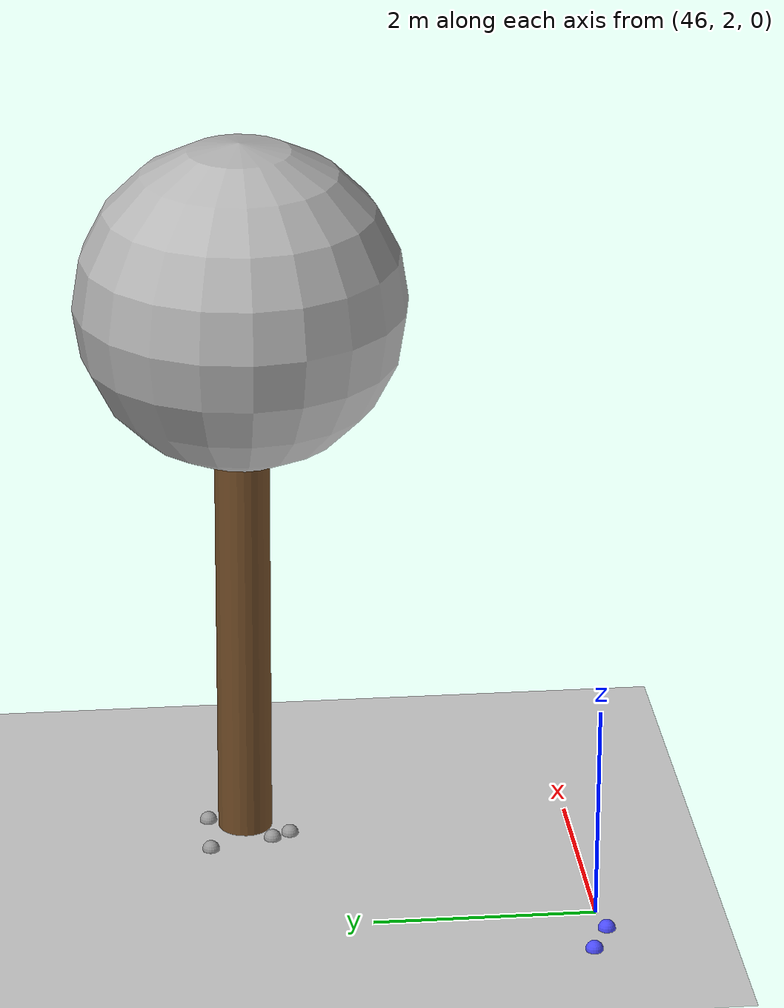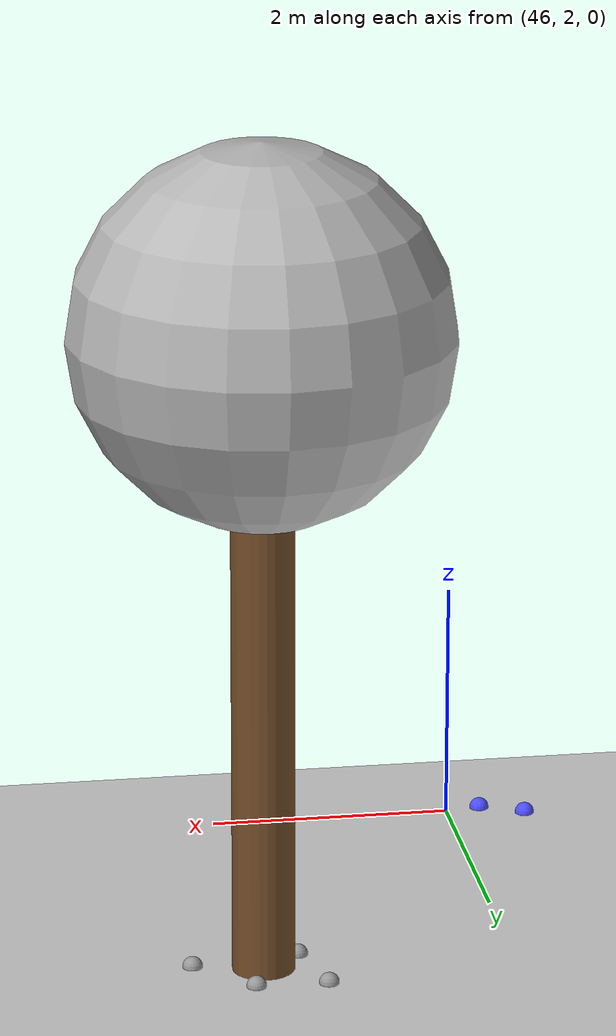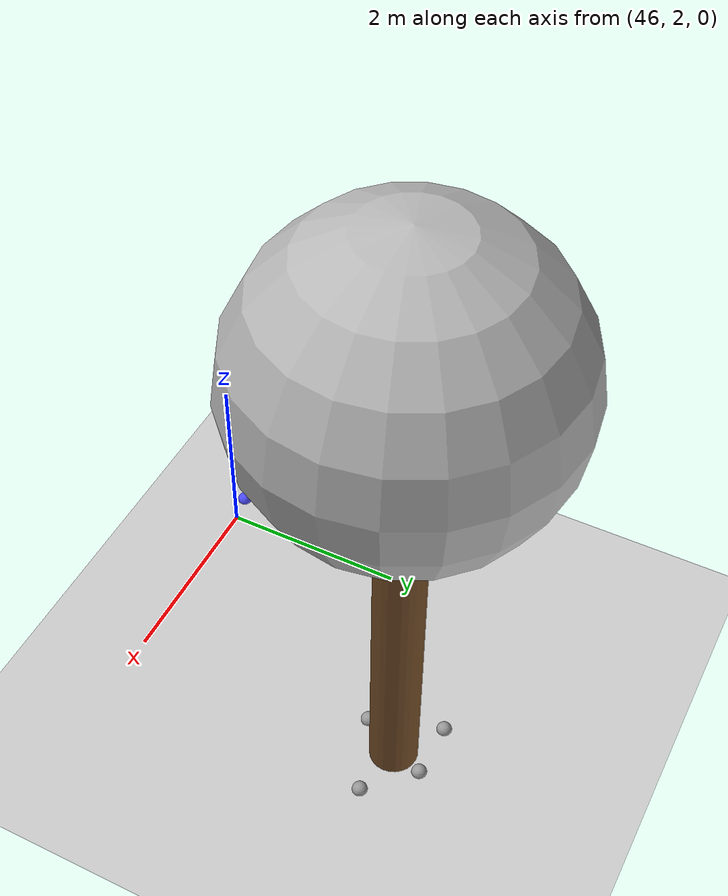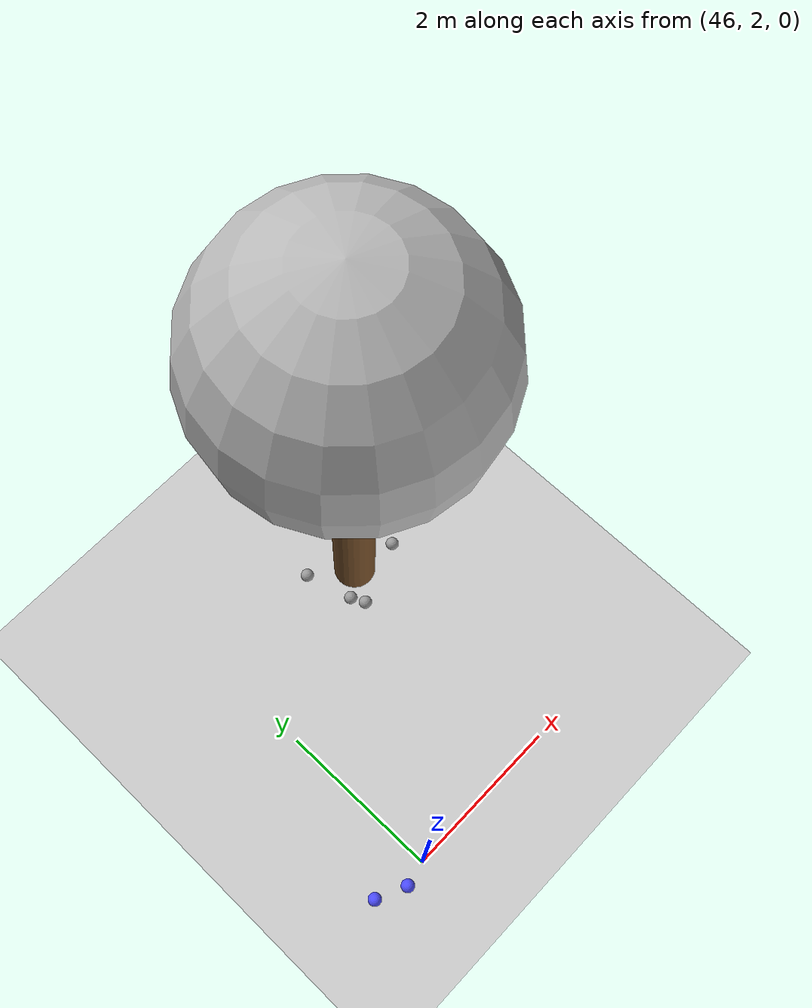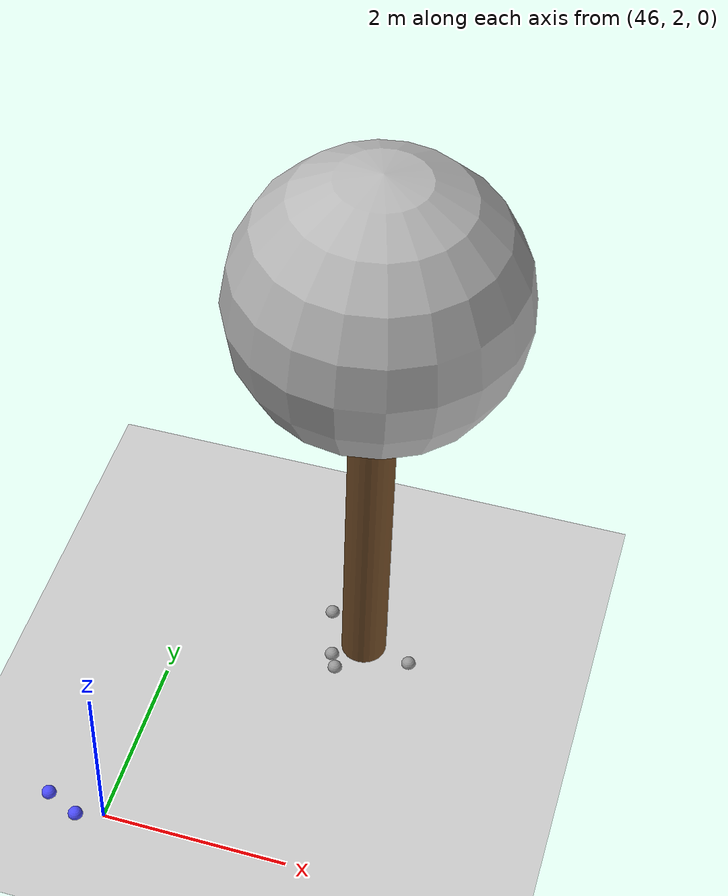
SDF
<sdf version="1.7">
 <world name="default">
  <model name="ground_plane">
   <static>1</static>
   <link name="link">
    <collision name="collision">
     <geometry><plane><normal>0 0 1</normal><size>100 100</size></plane></geometry>
     <surface>
      <contact><collide_bitmask>65535</collide_bitmask></contact>
      <friction><ode><mu>100</mu><mu2>50</mu2></ode></friction>
     </surface>
    </collision>
    <visual name="visual">
     <cast_shadows>0</cast_shadows>
     <geometry><plane><normal>0 0 1</normal><size>100 100</size></plane></geometry>
     <material>
      <script><uri>file://media/materials/scripts/gazebo.material</uri><name>Gazebo/Grey</name></script>
     </material>
    </visual>
   </link>
  </model>
  <model name="tree_simple_87">
   <static>1</static>
   <link name="link">
    <pose>0 0 0.1 0 -0 0</pose>
    <inertial>
     <mass>666</mass>
     <inertia>
      <ixx>0.0861167</ixx>
      <ixy>0</ixy>
      <ixz>0</ixz>
      <iyy>0.0861167</iyy>
      <iyz>0</iyz>
      <izz>0.0861167</izz>
     </inertia>
    </inertial>
    <collision name="collision_trunk">
     <pose>0 0 2 0 -0 0</pose>
     <geometry><cylinder><radius>0.25</radius><length>4</length></cylinder></geometry>
     <surface>
      <contact>
       <poissons_ratio>0.347</poissons_ratio>
       <elastic_modulus>8.8e+09</elastic_modulus>
       <ode><kp>100000</kp><kd>100</kd><max_vel>100</max_vel><min_depth>0.001</min_depth></ode>
      </contact>
      <friction>
       <torsional>
        <coefficient>1</coefficient>
        <use_patch_radius>0</use_patch_radius>
        <surface_radius>0.01</surface_radius>
       </torsional>
      </friction>
     </surface>
    </collision>
    <collision name="collision_treetop">
     <pose>0 0 5.2 0 -0 0</pose>
     <geometry><sphere><radius>1.5</radius></sphere></geometry>
     <surface>
      <contact>
       <poissons_ratio>0.347</poissons_ratio>
       <elastic_modulus>8.8e+09</elastic_modulus>
       <ode><kp>100000</kp><kd>100</kd><max_vel>100</max_vel><min_depth>0.001</min_depth></ode>
      </contact>
      <friction>
       <torsional>
        <coefficient>1</coefficient>
        <use_patch_radius>0</use_patch_radius>
        <surface_radius>0.01</surface_radius>
       </torsional>
      </friction>
     </surface>
    </collision>
    <visual name="trunk">
     <pose>0 0 2 0 -0 0</pose>
     <geometry><cylinder><radius>0.25</radius><length>4</length></cylinder></geometry>
     <material>
      <script>
       <uri>model://tree_simple/scripts</uri>
       <uri>model://tree_simple/materials/textures</uri>
       <name>TreeSimple/Trunk</name>
      </script>
     </material>
    </visual>
    <visual name="treetop">
     <pose>0 0 5.2 0 -0 0</pose>
     <geometry><sphere><radius>1.5</radius></sphere></geometry>
     <material>
      <script>
       <uri>model://tree_simple/scripts</uri>
       <uri>model://tree_simple/materials/textures</uri>
       <name>TreeSimple/Treetop</name>
      </script>
     </material>
    </visual>
   </link>
   <pose>48 5 -0.1 0 -0 0</pose>
  </model>
  <model name="seed_black_78">
   <link name="link">
    <inertial>
     <mass>1</mass>
     <inertia><ixx>0.1</ixx><ixy>0</ixy><ixz>0</ixz><iyy>0.1</iyy><iyz>0</iyz><izz>0.1</izz></inertia>
    </inertial>
    <visual name="visual">
     <geometry><sphere><radius>0.08</radius></sphere></geometry>
     <material>
      <script><name>Gazebo/Grey</name><uri>file://media/materials/scripts/gazebo.material</uri></script>
      <shader type="pixel"><normal_map>__default__</normal_map></shader>
      <ambient>0 0 0 1</ambient>
      <diffuse>0.7 0.7 0.7 1</diffuse>
      <specular>0.01 0.01 0.01 1</specular>
      <emissive>0 0 0 1</emissive>
     </material>
    </visual>
    <collision name="collision">
     <geometry><sphere><radius>0.0005</radius></sphere></geometry>
     <surface>
      <friction>
       <ode><mu>1</mu><mu2>1</mu2><fdir1>0 0 0</fdir1><slip1>0</slip1><slip2>0</slip2></ode>
       <torsional>
        <coefficient>1</coefficient>
        <patch_radius>0</patch_radius>
        <surface_radius>0</surface_radius>
        <use_patch_radius>1</use_patch_radius>
        <ode><slip>0</slip></ode>
       </torsional>
      </friction>
      <bounce><restitution_coefficient>0</restitution_coefficient><threshold>1e+06</threshold></bounce>
      <contact>
       <collide_without_contact>0</collide_without_contact>
       <collide_without_contact_bitmask>1</collide_without_contact_bitmask>
       <collide_bitmask>1</collide_bitmask>
       <ode>
        <soft_cfm>0</soft_cfm>
        <soft_erp>0.2</soft_erp>
        <kp>1e+13</kp>
        <kd>1</kd>
        <max_vel>0.01</max_vel>
        <min_depth>0</min_depth>
       </ode>
       <bullet>
        <split_impulse>1</split_impulse>
        <split_impulse_penetration_threshold>-0.01</split_impulse_penetration_threshold>
        <soft_cfm>0</soft_cfm>
        <soft_erp>0.2</soft_erp>
        <kp>1e+13</kp>
        <kd>1</kd>
       </bullet>
      </contact>
     </surface>
    </collision>
   </link>
   <static>0</static>
   <pose>47.531 5.35329 0.0005 0 -0 0</pose>
  </model>
  <model name="seed_black_79">
   <link name="link">
    <inertial>
     <mass>1</mass>
     <inertia><ixx>0.1</ixx><ixy>0</ixy><ixz>0</ixz><iyy>0.1</iyy><iyz>0</iyz><izz>0.1</izz></inertia>
    </inertial>
    <visual name="visual">
     <geometry><sphere><radius>0.08</radius></sphere></geometry>
     <material>
      <script><name>Gazebo/Grey</name><uri>file://media/materials/scripts/gazebo.material</uri></script>
      <shader type="pixel"><normal_map>__default__</normal_map></shader>
      <ambient>0 0 0 1</ambient>
      <diffuse>0.7 0.7 0.7 1</diffuse>
      <specular>0.01 0.01 0.01 1</specular>
      <emissive>0 0 0 1</emissive>
     </material>
    </visual>
    <collision name="collision">
     <geometry><sphere><radius>0.0005</radius></sphere></geometry>
     <surface>
      <friction>
       <ode><mu>1</mu><mu2>1</mu2><fdir1>0 0 0</fdir1><slip1>0</slip1><slip2>0</slip2></ode>
       <torsional>
        <coefficient>1</coefficient>
        <patch_radius>0</patch_radius>
        <surface_radius>0</surface_radius>
        <use_patch_radius>1</use_patch_radius>
        <ode><slip>0</slip></ode>
       </torsional>
      </friction>
      <bounce><restitution_coefficient>0</restitution_coefficient><threshold>1e+06</threshold></bounce>
      <contact>
       <collide_without_contact>0</collide_without_contact>
       <collide_without_contact_bitmask>1</collide_without_contact_bitmask>
       <collide_bitmask>1</collide_bitmask>
       <ode>
        <soft_cfm>0</soft_cfm>
        <soft_erp>0.2</soft_erp>
        <kp>1e+13</kp>
        <kd>1</kd>
        <max_vel>0.01</max_vel>
        <min_depth>0</min_depth>
       </ode>
       <bullet>
        <split_impulse>1</split_impulse>
        <split_impulse_penetration_threshold>-0.01</split_impulse_penetration_threshold>
        <soft_cfm>0</soft_cfm>
        <soft_erp>0.2</soft_erp>
        <kp>1e+13</kp>
        <kd>1</kd>
       </bullet>
      </contact>
     </surface>
    </collision>
   </link>
   <static>0</static>
   <pose>47.7755 4.60112 0.0005 0 -0 0</pose>
  </model>
  <model name="seed_black_83">
   <link name="link">
    <inertial>
     <mass>1</mass>
     <inertia><ixx>0.1</ixx><ixy>0</ixy><ixz>0</ixz><iyy>0.1</iyy><iyz>0</iyz><izz>0.1</izz></inertia>
    </inertial>
    <visual name="visual">
     <geometry><sphere><radius>0.08</radius></sphere></geometry>
     <material>
      <script><name>Gazebo/Grey</name><uri>file://media/materials/scripts/gazebo.material</uri></script>
      <shader type="pixel"><normal_map>__default__</normal_map></shader>
      <ambient>0 0 0 1</ambient>
      <diffuse>0.7 0.7 0.7 1</diffuse>
      <specular>0.01 0.01 0.01 1</specular>
      <emissive>0 0 0 1</emissive>
     </material>
    </visual>
    <collision name="collision">
     <geometry><sphere><radius>0.0005</radius></sphere></geometry>
     <surface>
      <friction>
       <ode><mu>1</mu><mu2>1</mu2><fdir1>0 0 0</fdir1><slip1>0</slip1><slip2>0</slip2></ode>
       <torsional>
        <coefficient>1</coefficient>
        <patch_radius>0</patch_radius>
        <surface_radius>0</surface_radius>
        <use_patch_radius>1</use_patch_radius>
        <ode><slip>0</slip></ode>
       </torsional>
      </friction>
      <bounce><restitution_coefficient>0</restitution_coefficient><threshold>1e+06</threshold></bounce>
      <contact>
       <collide_without_contact>0</collide_without_contact>
       <collide_without_contact_bitmask>1</collide_without_contact_bitmask>
       <collide_bitmask>1</collide_bitmask>
       <ode>
        <soft_cfm>0</soft_cfm>
        <soft_erp>0.2</soft_erp>
        <kp>1e+13</kp>
        <kd>1</kd>
        <max_vel>0.01</max_vel>
        <min_depth>0</min_depth>
       </ode>
       <bullet>
        <split_impulse>1</split_impulse>
        <split_impulse_penetration_threshold>-0.01</split_impulse_penetration_threshold>
        <soft_cfm>0</soft_cfm>
        <soft_erp>0.2</soft_erp>
        <kp>1e+13</kp>
        <kd>1</kd>
       </bullet>
      </contact>
     </surface>
    </collision>
   </link>
   <static>0</static>
   <pose>48.1031 5.33597 0.0005 0 -0 0</pose>
  </model>
  <model name="seed_black_84">
   <link name="link">
    <inertial>
     <mass>1</mass>
     <inertia><ixx>0.1</ixx><ixy>0</ixy><ixz>0</ixz><iyy>0.1</iyy><iyz>0</iyz><izz>0.1</izz></inertia>
    </inertial>
    <visual name="visual">
     <geometry><sphere><radius>0.08</radius></sphere></geometry>
     <material>
      <script><name>Gazebo/Grey</name><uri>file://media/materials/scripts/gazebo.material</uri></script>
      <shader type="pixel"><normal_map>__default__</normal_map></shader>
      <ambient>0 0 0 1</ambient>
      <diffuse>0.7 0.7 0.7 1</diffuse>
      <specular>0.01 0.01 0.01 1</specular>
      <emissive>0 0 0 1</emissive>
     </material>
    </visual>
    <collision name="collision">
     <geometry><sphere><radius>0.0005</radius></sphere></geometry>
     <surface>
      <friction>
       <ode><mu>1</mu><mu2>1</mu2><fdir1>0 0 0</fdir1><slip1>0</slip1><slip2>0</slip2></ode>
       <torsional>
        <coefficient>1</coefficient>
        <patch_radius>0</patch_radius>
        <surface_radius>0</surface_radius>
        <use_patch_radius>1</use_patch_radius>
        <ode><slip>0</slip></ode>
       </torsional>
      </friction>
      <bounce><restitution_coefficient>0</restitution_coefficient><threshold>1e+06</threshold></bounce>
      <contact>
       <collide_without_contact>0</collide_without_contact>
       <collide_without_contact_bitmask>1</collide_without_contact_bitmask>
       <collide_bitmask>1</collide_bitmask>
       <ode>
        <soft_cfm>0</soft_cfm>
        <soft_erp>0.2</soft_erp>
        <kp>1e+13</kp>
        <kd>1</kd>
        <max_vel>0.01</max_vel>
        <min_depth>0</min_depth>
       </ode>
       <bullet>
        <split_impulse>1</split_impulse>
        <split_impulse_penetration_threshold>-0.01</split_impulse_penetration_threshold>
        <soft_cfm>0</soft_cfm>
        <soft_erp>0.2</soft_erp>
        <kp>1e+13</kp>
        <kd>1</kd>
       </bullet>
      </contact>
     </surface>
    </collision>
   </link>
   <static>0</static>
   <pose>47.693 4.77012 0.0005 0 -0 0</pose>
  </model>
  <model name="seed_black_85">
   <link name="link">
    <inertial>
     <mass>1</mass>
     <inertia><ixx>0.1</ixx><ixy>0</ixy><ixz>0</ixz><iyy>0.1</iyy><iyz>0</iyz><izz>0.1</izz></inertia>
    </inertial>
    <visual name="visual">
     <geometry><sphere><radius>0.08</radius></sphere></geometry>
     <material>
      <script><name>Gazebo/Grey</name><uri>file://media/materials/scripts/gazebo.material</uri></script>
      <shader type="pixel"><normal_map>__default__</normal_map></shader>
      <ambient>0 0 0 1</ambient>
      <diffuse>0.7 0.7 0.7 1</diffuse>
      <specular>0.01 0.01 0.01 1</specular>
      <emissive>0 0 0 1</emissive>
     </material>
    </visual>
    <collision name="collision">
     <geometry><sphere><radius>0.0005</radius></sphere></geometry>
     <surface>
      <friction>
       <ode><mu>1</mu><mu2>1</mu2><fdir1>0 0 0</fdir1><slip1>0</slip1><slip2>0</slip2></ode>
       <torsional>
        <coefficient>1</coefficient>
        <patch_radius>0</patch_radius>
        <surface_radius>0</surface_radius>
        <use_patch_radius>1</use_patch_radius>
        <ode><slip>0</slip></ode>
       </torsional>
      </friction>
      <bounce><restitution_coefficient>0</restitution_coefficient><threshold>1e+06</threshold></bounce>
      <contact>
       <collide_without_contact>0</collide_without_contact>
       <collide_without_contact_bitmask>1</collide_without_contact_bitmask>
       <collide_bitmask>1</collide_bitmask>
       <ode>
        <soft_cfm>0</soft_cfm>
        <soft_erp>0.2</soft_erp>
        <kp>1e+13</kp>
        <kd>1</kd>
        <max_vel>0.01</max_vel>
        <min_depth>0</min_depth>
       </ode>
       <bullet>
        <split_impulse>1</split_impulse>
        <split_impulse_penetration_threshold>-0.01</split_impulse_penetration_threshold>
        <soft_cfm>0</soft_cfm>
        <soft_erp>0.2</soft_erp>
        <kp>1e+13</kp>
        <kd>1</kd>
       </bullet>
      </contact>
     </surface>
    </collision>
   </link>
   <static>0</static>
   <pose>48.5509 4.89026 0.0005 0 -0 0</pose>
  </model>
  <model name="seed_blue_192">
   <link name="link">
    <inertial>
     <mass>1</mass>
     <inertia><ixx>0.1</ixx><ixy>0</ixy><ixz>0</ixz><iyy>0.1</iyy><iyz>0</iyz><izz>0.1</izz></inertia>
    </inertial>
    <visual name="visual">
     <geometry><sphere><radius>0.08</radius></sphere></geometry>
     <material>
      <script><name>Gazebo/Grey</name><uri>file://media/materials/scripts/gazebo.material</uri></script>
      <shader type="pixel"><normal_map>__default__</normal_map></shader>
      <ambient>0.3 0.3 1 1</ambient>
      <diffuse>0.7 0.7 0.7 1</diffuse>
      <specular>0.01 0.01 0.01 1</specular>
      <emissive>0 0 0 1</emissive>
     </material>
    </visual>
    <collision name="collision">
     <geometry><sphere><radius>0.0005</radius></sphere></geometry>
     <surface>
      <friction>
       <ode><mu>1</mu><mu2>1</mu2><fdir1>0 0 0</fdir1><slip1>0</slip1><slip2>0</slip2></ode>
       <torsional>
        <coefficient>1</coefficient>
        <patch_radius>0</patch_radius>
        <surface_radius>0</surface_radius>
        <use_patch_radius>1</use_patch_radius>
        <ode><slip>0</slip></ode>
       </torsional>
      </friction>
      <bounce><restitution_coefficient>0</restitution_coefficient><threshold>1e+06</threshold></bounce>
      <contact>
       <collide_without_contact>0</collide_without_contact>
       <collide_without_contact_bitmask>1</collide_without_contact_bitmask>
       <collide_bitmask>1</collide_bitmask>
       <ode>
        <soft_cfm>0</soft_cfm>
        <soft_erp>0.2</soft_erp>
        <kp>1e+13</kp>
        <kd>1</kd>
        <max_vel>0.01</max_vel>
        <min_depth>0</min_depth>
       </ode>
       <bullet>
        <split_impulse>1</split_impulse>
        <split_impulse_penetration_threshold>-0.01</split_impulse_penetration_threshold>
        <soft_cfm>0</soft_cfm>
        <soft_erp>0.2</soft_erp>
        <kp>1e+13</kp>
        <kd>1</kd>
       </bullet>
      </contact>
     </surface>
    </collision>
   </link>
   <static>0</static>
   <pose>45.7042 1.94115 0.0005 0 -0 0</pose>
  </model>
  <model name="seed_blue_194">
   <link name="link">
    <inertial>
     <mass>1</mass>
     <inertia><ixx>0.1</ixx><ixy>0</ixy><ixz>0</ixz><iyy>0.1</iyy><iyz>0</iyz><izz>0.1</izz></inertia>
    </inertial>
    <visual name="visual">
     <geometry><sphere><radius>0.08</radius></sphere></geometry>
     <material>
      <script><name>Gazebo/Grey</name><uri>file://media/materials/scripts/gazebo.material</uri></script>
      <shader type="pixel"><normal_map>__default__</normal_map></shader>
      <ambient>0.3 0.3 1 1</ambient>
      <diffuse>0.7 0.7 0.7 1</diffuse>
      <specular>0.01 0.01 0.01 1</specular>
      <emissive>0 0 0 1</emissive>
     </material>
    </visual>
    <collision name="collision">
     <geometry><sphere><radius>0.0005</radius></sphere></geometry>
     <surface>
      <friction>
       <ode><mu>1</mu><mu2>1</mu2><fdir1>0 0 0</fdir1><slip1>0</slip1><slip2>0</slip2></ode>
       <torsional>
        <coefficient>1</coefficient>
        <patch_radius>0</patch_radius>
        <surface_radius>0</surface_radius>
        <use_patch_radius>1</use_patch_radius>
        <ode><slip>0</slip></ode>
       </torsional>
      </friction>
      <bounce><restitution_coefficient>0</restitution_coefficient><threshold>1e+06</threshold></bounce>
      <contact>
       <collide_without_contact>0</collide_without_contact>
       <collide_without_contact_bitmask>1</collide_without_contact_bitmask>
       <collide_bitmask>1</collide_bitmask>
       <ode>
        <soft_cfm>0</soft_cfm>
        <soft_erp>0.2</soft_erp>
        <kp>1e+13</kp>
        <kd>1</kd>
        <max_vel>0.01</max_vel>
        <min_depth>0</min_depth>
       </ode>
       <bullet>
        <split_impulse>1</split_impulse>
        <split_impulse_penetration_threshold>-0.01</split_impulse_penetration_threshold>
        <soft_cfm>0</soft_cfm>
        <soft_erp>0.2</soft_erp>
        <kp>1e+13</kp>
        <kd>1</kd>
       </bullet>
      </contact>
     </surface>
    </collision>
   </link>
   <static>0</static>
   <pose>45.3411 2.1059 0.0005 0 -0 0</pose>
  </model>
 </world>
</sdf>
